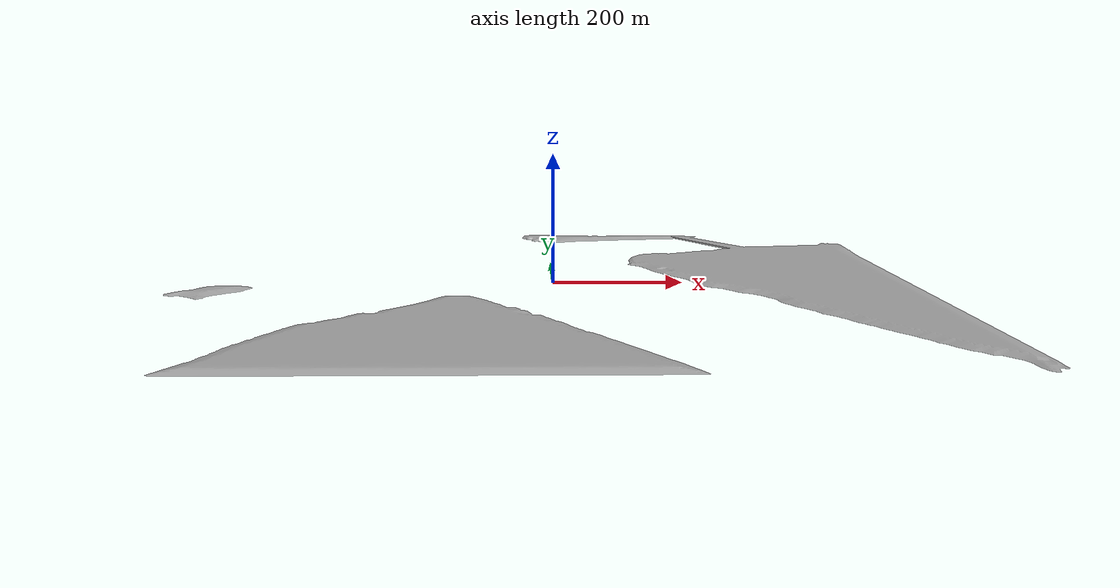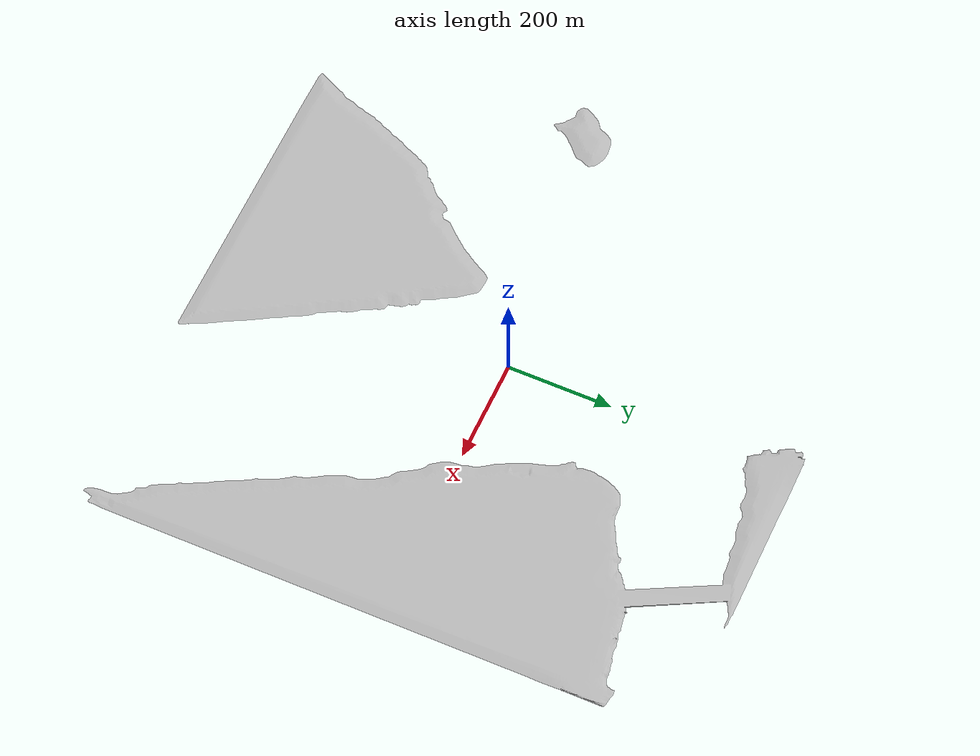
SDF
<?xml version="1.0" encoding="UTF-8"?>
<sdf version="1.6">
  <model name="sandisland">
    <pose>0 0 0 0 0 0</pose>
    <static>true</static>
    <link name="silink">
      <visual name="visual">
        <geometry>
          <mesh>
            <uri>file://sandisland/mesh/sandisland.dae</uri>
          </mesh>
        </geometry>
      </visual>
      <collision name="collision">
        <geometry>
          <mesh>
            <uri>file://sandisland/mesh/sandisland.dae</uri>
          </mesh>
        </geometry>
      </collision>
    </link>
  </model>
</sdf>
